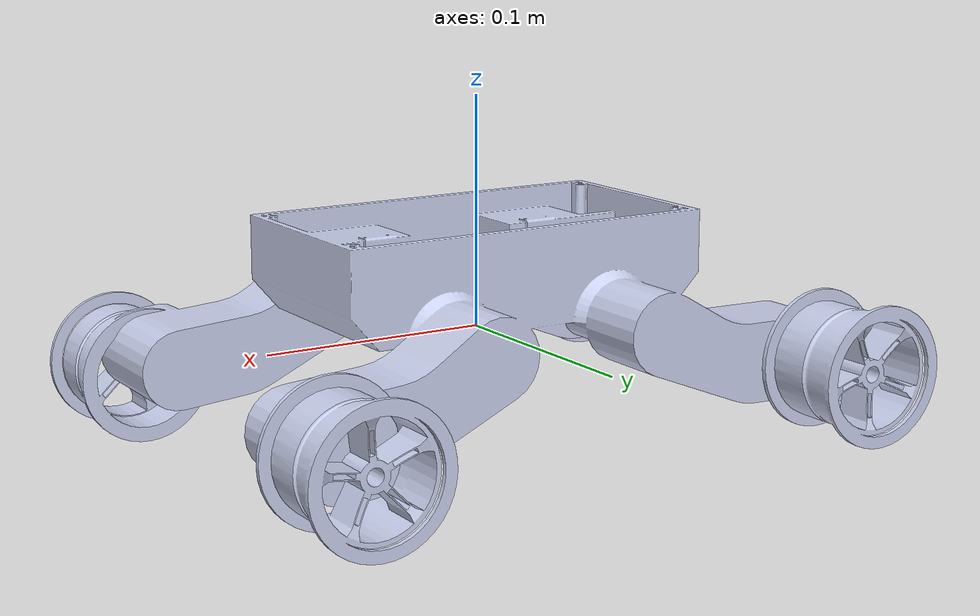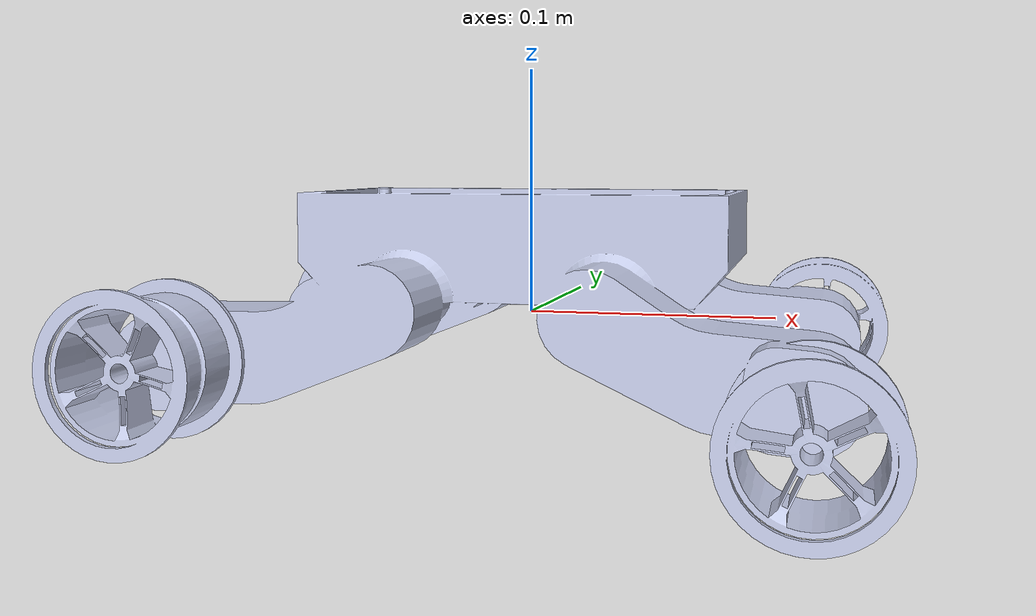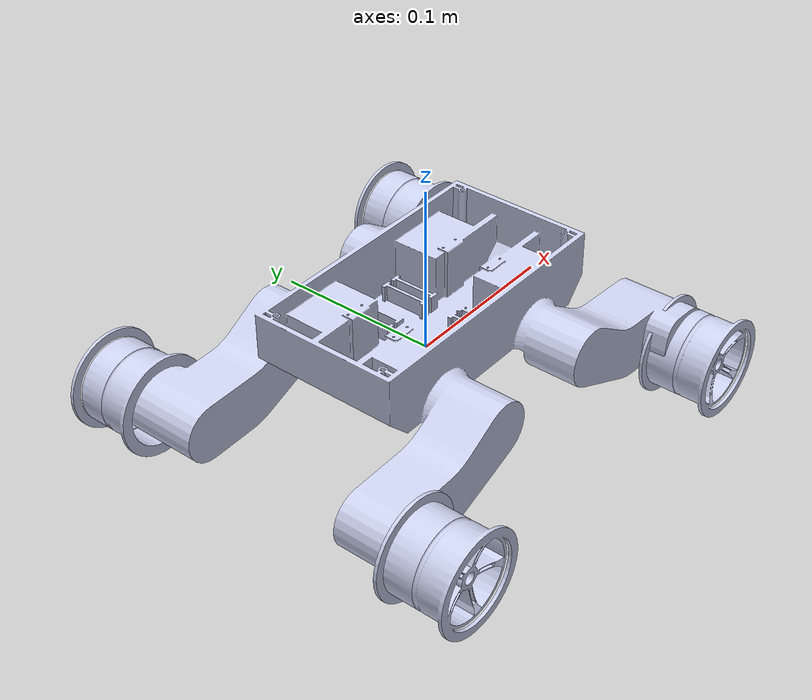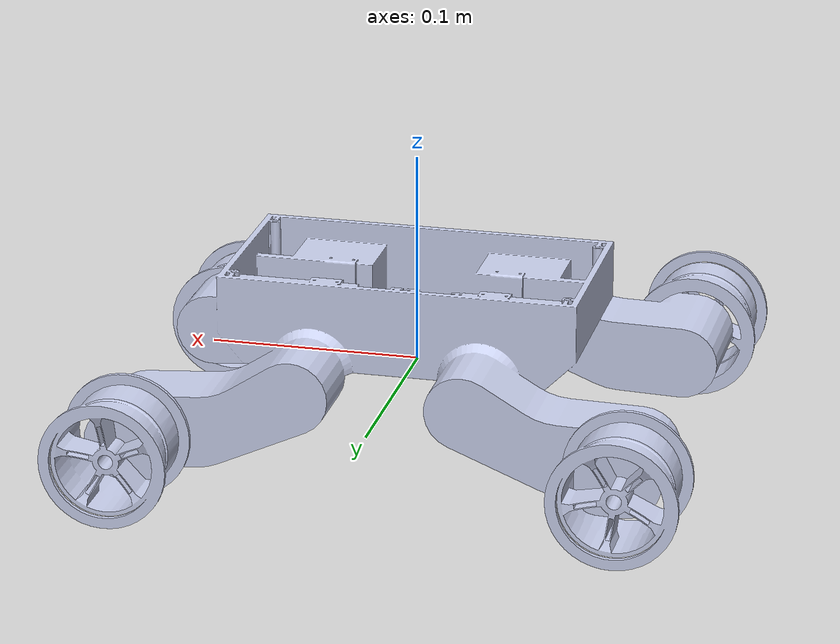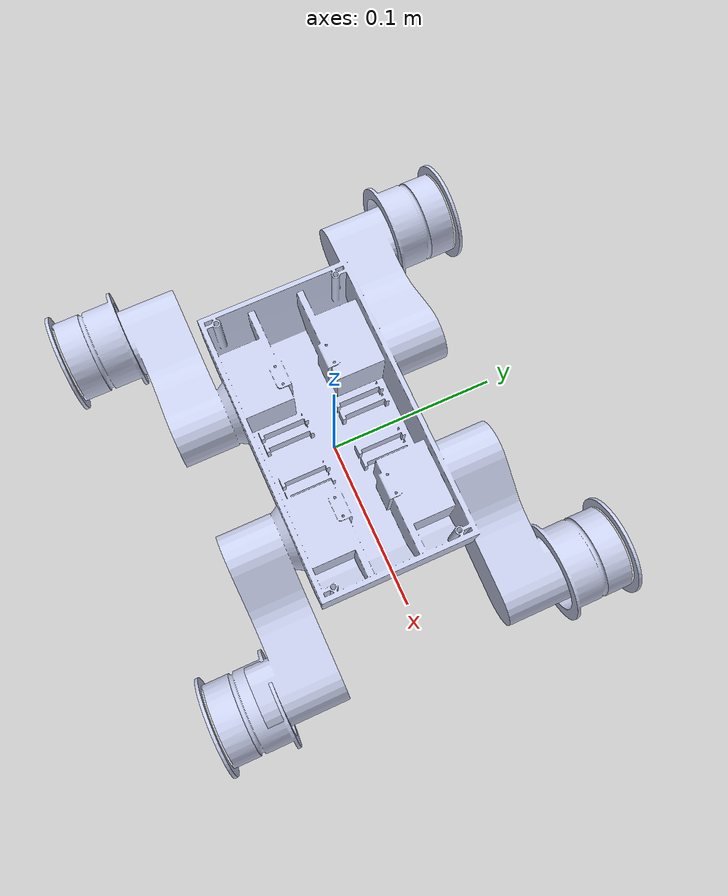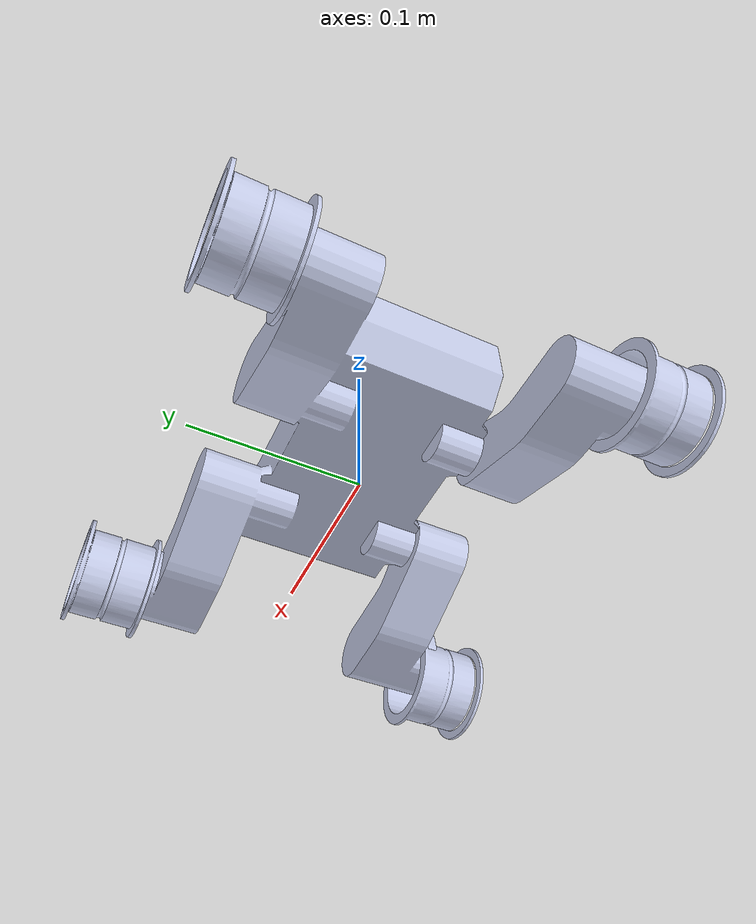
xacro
<?xml version="1.0" encoding="utf-8"?>

<robot
  name="rover" xmlns:xacro="http://www.ros.org/wiki/xacro">

  <link
    name="base_link">
    <inertial>
      <origin
        xyz="-0.00013831907102568 1.72081362193362E-11 0.00312541383867626"
        rpy="0 0 0" />
      <mass
        value="0.841217991440235" />
      <inertia
        ixx="0.00029048014505705"
        ixy="-9.55160061707672E-10"
        ixz="1.5155822937521E-05"
        iyy="0.00136894323138028"
        iyz="-4.51615469448788E-12"
        izz="0.00140614084506565" />
    </inertial>

    <visual>
      <origin
        xyz="0 0 0"
        rpy="0 0 0" />
      <geometry>
        <mesh
          filename="file:///home/anonymous/dev_ws/src/rover/meshes/base_link.STL" />
      </geometry>
      <material
        name="">
        <color
          rgba="0.792156862745098 0.819607843137255 0.933333333333333 1" />
      </material>
    </visual>
    <collision>
      <origin
        xyz="0 0 0"
        rpy="0 0 0" />
      <geometry>
        <mesh
          filename="file:///home/anonymous/dev_ws/src/rover/meshes/base_link.STL" />
      </geometry>
    </collision>
  </link>

  <link
    name="front_right_wheel">
    <inertial>
      <origin
        xyz="-1.02049202421739E-11 4.52816655699406E-11 -0.0188572675950841"
        rpy="0 0 0" />
      <mass
        value="0.0169810669319342" />
      <inertia
        ixx="6.69284231029886E-06"
        ixy="-2.3593534204749E-14"
        ixz="3.38705114836052E-14"
        iyy="6.69284231027905E-06"
        iyz="8.02048076338983E-15"
        izz="9.06807752001078E-06" />
    </inertial>
    <visual>
      <origin
        xyz="0 0 0"
        rpy="0 0 0" />
      <geometry>
        <mesh
          filename="file:///home/anonymous/dev_ws/src/rover/meshes/front_right_wheel.STL" />
      </geometry>
      <material
        name="">
        <color
          rgba="0.792156862745098 0.819607843137255 0.933333333333333 1" />
      </material>
    </visual>
    <collision>
      <origin
        xyz="0 0 0"
        rpy="0 0 0" />
      <geometry>
        <mesh
          filename="file:///home/anonymous/dev_ws/src/rover/meshes/front_right_wheel.STL" />
      </geometry>
    </collision>
  </link>

  <joint
    name="base_link_to_front_right_wheel"
    type="continuous">
    <origin
      xyz="0.117290515707591 -0.127 -0.025435192502925"
      rpy="1.5707963267949 -1.5707963267949 0" />
    <parent
      link="base_link" />
    <child
      link="front_right_wheel" />
    <axis
      xyz="0 0 -1" />
  </joint>

  <link
    name="front_left_wheel">
    <inertial>
      <origin
        xyz="1.02049063643861E-11 4.52816638352171E-11 -0.018857267595084"
        rpy="0 0 0" />
      <mass
        value="0.0169810669319342" />
      <inertia
        ixx="6.69284231029887E-06"
        ixy="2.35935343554851E-14"
        ixz="-3.38705125007288E-14"
        iyy="6.69284231027906E-06"
        iyz="8.02048279684241E-15"
        izz="9.06807752001078E-06" />
    </inertial>
    <visual>
      <origin
        xyz="0 0 0"
        rpy="0 0 0" />
      <geometry>
        <mesh
          filename="file:///home/anonymous/dev_ws/src/rover/meshes/front_left_wheel.STL" />
      </geometry>
      <material
        name="">
        <color
          rgba="0.792156862745098 0.819607843137255 0.933333333333333 1" />
      </material>
    </visual>
    <collision>
      <origin
        xyz="0 0 0"
        rpy="0 0 0" />
      <geometry>
        <mesh
          filename="file:///home/anonymous/dev_ws/src/rover/meshes/front_left_wheel.STL" />
      </geometry>
    </collision>
  </link>
  <joint
    name="base_link_to_front_left_wheel"
    type="continuous">
    <origin
      xyz="0.11659 0.127 -0.015104"
      rpy="1.5708 0 3.1416" />
    <parent
      link="base_link" />
    <child
      link="front_left_wheel" />
    <axis
      xyz="0 0 -1" />
  </joint>
  <link
    name="bottom_right_wheel">
    <inertial>
      <origin
        xyz="-3.26679794326878E-11 -3.29753377381614E-11 -0.018857267595084"
        rpy="0 0 0" />
      <mass
        value="0.0169810669319342" />
      <inertia
        ixx="6.69284228887819E-06"
        ixy="9.91131174432663E-15"
        ixz="-2.49917716423862E-14"
        iyy="6.69284233169973E-06"
        iyz="2.42270662118507E-14"
        izz="9.06807752001078E-06" />
    </inertial>
    <visual>
      <origin
        xyz="0 0 0"
        rpy="0 0 0" />
      <geometry>
        <mesh
          filename="file:///home/anonymous/dev_ws/src/rover/meshes/bottom_right_wheel.STL" />
      </geometry>
      <material
        name="">
        <color
          rgba="0.792156862745098 0.819607843137255 0.933333333333333 1" />
      </material>
    </visual>
    <collision>
      <origin
        xyz="0 0 0"
        rpy="0 0 0" />
      <geometry>
        <mesh
          filename="file:///home/anonymous/dev_ws/src/rover/meshes/bottom_right_wheel.STL" />
      </geometry>
    </collision>
  </link>

  <joint
    name="base_link_to_bottom_right_wheel"
    type="continuous">
    <origin
      xyz="-0.1177 -0.127 -0.011032"
      rpy="1.5708 0 0" />
    <parent
      link="base_link" />
    <child
      link="bottom_right_wheel" />
    <axis
      xyz="0 0 -1" />
  </joint>

  <link
    name="bottom_left_wheel">
    <inertial>
      <origin
        xyz="3.26679933104757E-11 -3.29753464117788E-11 -0.018857267595084"
        rpy="0 0 0" />
      <mass
        value="0.0169810669319342" />
      <inertia
        ixx="6.69284228887819E-06"
        ixy="-9.91131071353208E-15"
        ixz="2.49917735058932E-14"
        iyy="6.69284233169972E-06"
        iyz="2.42270622702387E-14"
        izz="9.06807752001077E-06" />
    </inertial>
    <visual>
      <origin
        xyz="0 0 0"
        rpy="0 0 0" />
      <geometry>
        <mesh
          filename="file:///home/anonymous/dev_ws/src/rover/meshes/bottom_left_wheel.STL" />
      </geometry>
      <material
        name="">
        <color
          rgba="0.792156862745098 0.819607843137255 0.933333333333333 1" />
      </material>
    </visual>
    <collision>
      <origin
        xyz="0 0 0"
        rpy="0 0 0" />
      <geometry>
        <mesh
          filename="file:///home/anonymous/dev_ws/src/rover/meshes/bottom_left_wheel.STL" />
      </geometry>
    </collision>
  </link>
  <joint
    name="base_link_to_bottom_left_wheel"
    type="continuous">
    <origin
      xyz="-0.1177 0.127 -0.011032"
      rpy="1.5708 0 3.1416" />
    <parent
      link="base_link" />
    <child
      link="bottom_left_wheel" />
    <axis
      xyz="0 0 -1" />
  </joint>
</robot>
